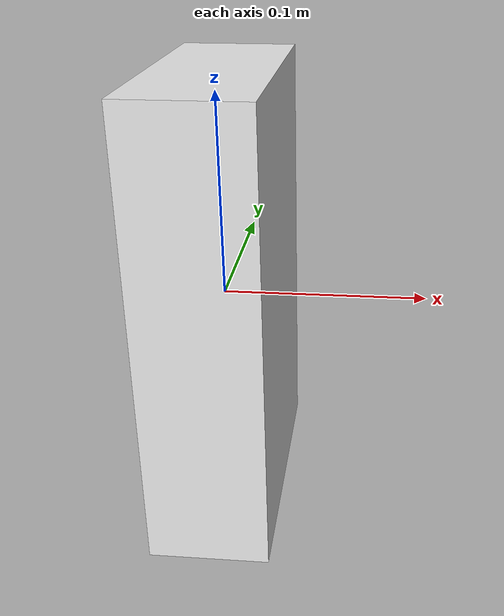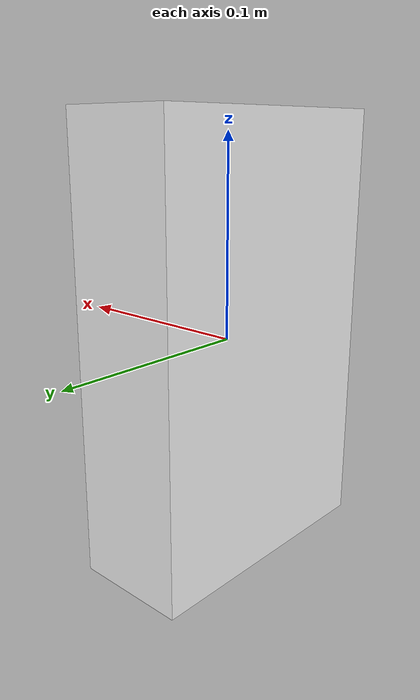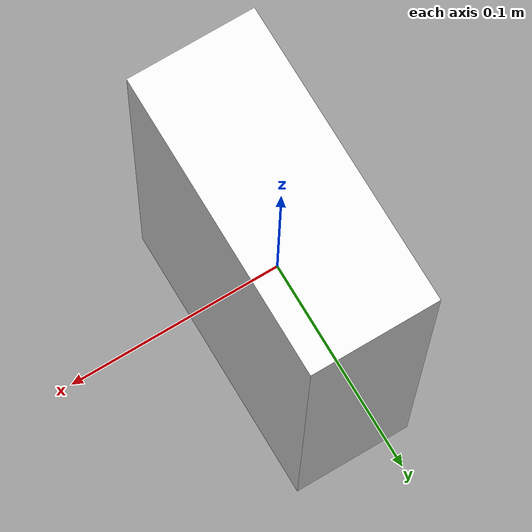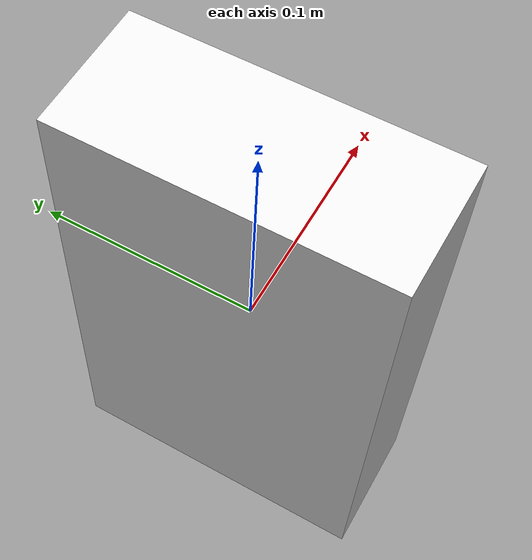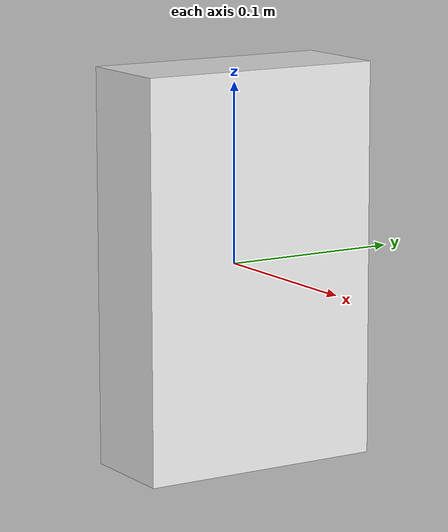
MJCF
<mujoco model="cereal_box">
    <compiler angle="radian" meshdir="./cereal_box/meshes" autolimits="true" />
    <default>
        <default class="cereal_box_collision">
            <geom rgba="0.9 0.9 0.9 1.0" />
        </default>
    </default>
    <asset>
        <mesh name="UCX_CerealBox_001" file="stl/UCX_CerealBox_001.stl" />
    </asset>

    <worldbody>
        <body name="cereal_box" >
            <freejoint />
            <inertial mass="1.7608798742294312" pos="0.0 -9.62056443935285e-19 0.0" quat="1.0 0.0 0.0 0.0" diaginertia="0.00989673100411892 0.0075958482921123505 0.0032881496008485556"/>
			<geom name="UCX_CerealBox_001" type="mesh" mesh="UCX_CerealBox_001" class="cereal_box_collision"/>
        </body>
    </worldbody>
</mujoco>
